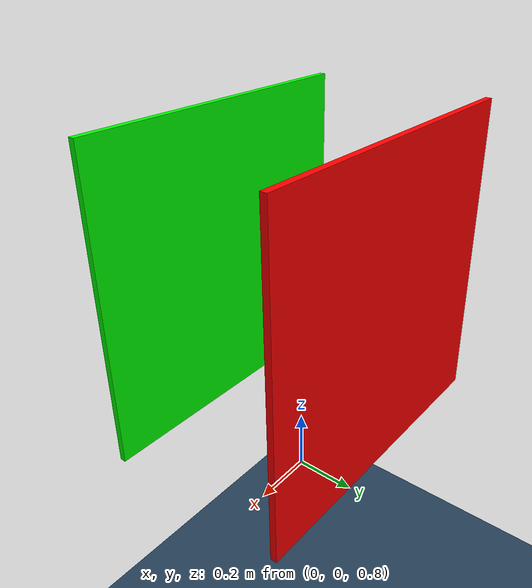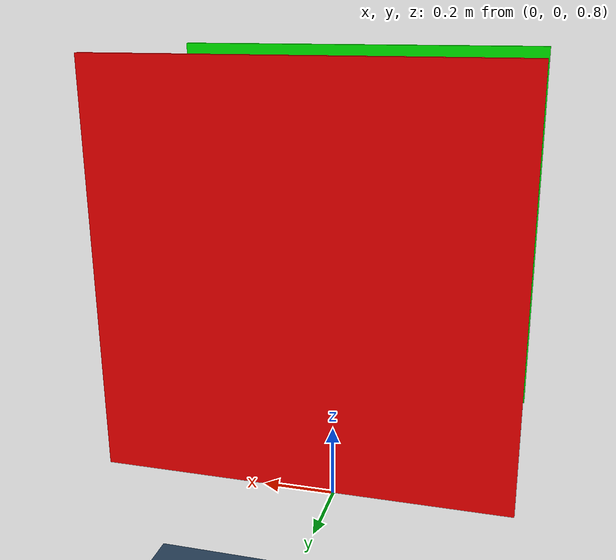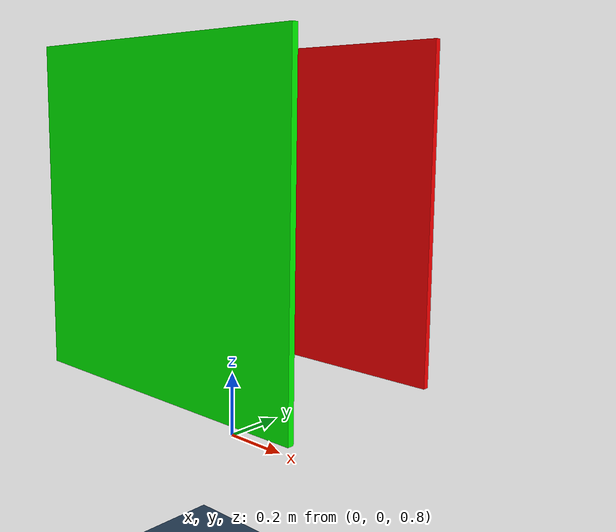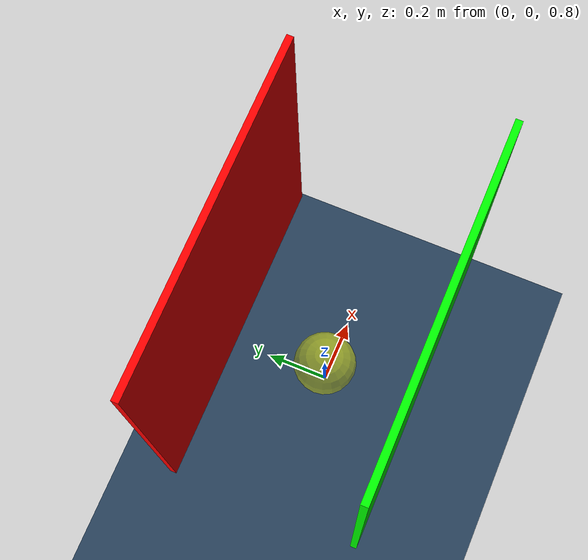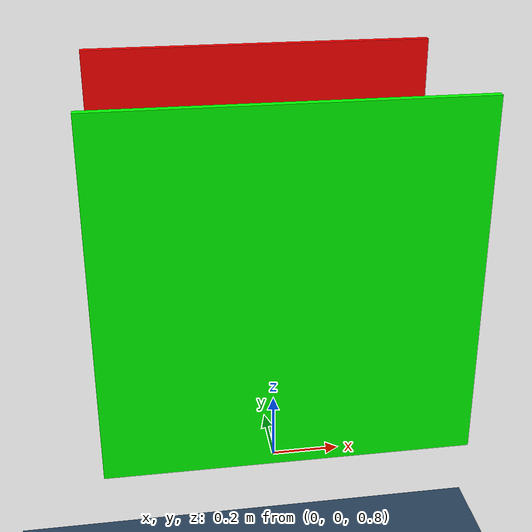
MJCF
<mujoco model="2Planes">
  <option timestep="0.005"/>
  <option gravity="0 0 0"/> # Disable the gravity. Ref: https://mujoco.readthedocs.io/en/latest/XMLreference.html#option

  <visual>
    <map force="0.1" zfar="30"/>
    <rgba haze="0.15 0.25 0.35 1"/>
    <global offwidth="2560" offheight="1440" elevation="-20" azimuth="120"/>
  </visual>

  <statistic center="0 0 0.7"/>

  <asset>
    <texture type="skybox" builtin="gradient" rgb1=".3 .5 .7" rgb2="0 0 0" width="32" height="512"/>
    <texture name="body" type="cube" builtin="flat" mark="cross" width="127" height="1278" rgb1="0.8 0.6 0.4" rgb2="0.8 0.6 0.4" markrgb="1 1 1" random="0.01"/>
    <material name="body" texture="body" texuniform="true" rgba="0.8 0.6 .4 1"/>
    <texture name="grid" type="2d" builtin="checker" width="512" height="512" rgb1=".1 .2 .3" rgb2=".2 .3 .4"/>
    <material name="grid" texture="grid" texrepeat="1 1" texuniform="true" reflectance=".2"/>
  </asset>

  <worldbody>
    <light name="top" directional="true" castshadow="false" cutoff="4" exponent="20"
           diffuse="1 1 1" pos="0 0 10" dir="0 0 -1"/>

    <geom name="floor" size="0 0 .05" type="plane" material="grid" condim="3"/>

    <!-- Two rectangular planes -->
    <geom name="plane1" type="box" pos="0 0.3 1.5"  size=".5 .01 .5" rgba="1 0 0 1"/>   # Red.
    <geom name="plane2" type="box" pos="0 -0.3 1.5"  size=".5 .01 .5" rgba="0 1 0 1"/>  # Green.

    <!-- Moving dot or ball -->
    <body name="dot" pos="0 0 1">
      <freejoint/>
      <geom name="sphere" type="sphere" size="0.1" rgba="1 1 0 0.5"/>  # The diameter was 0.1.
    </body>
  </worldbody>
</mujoco>
